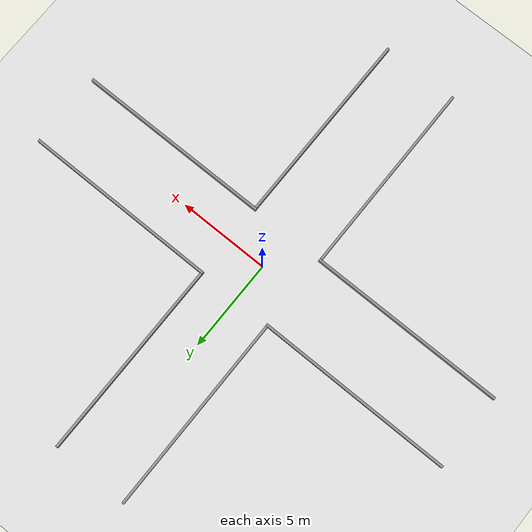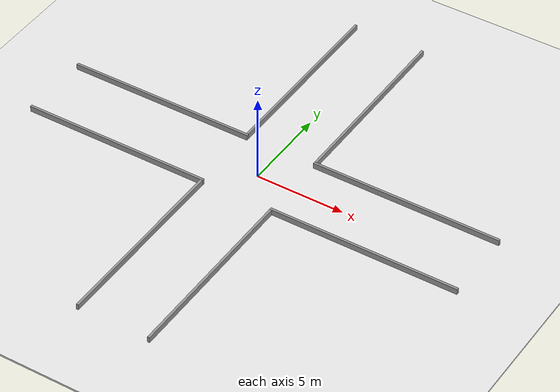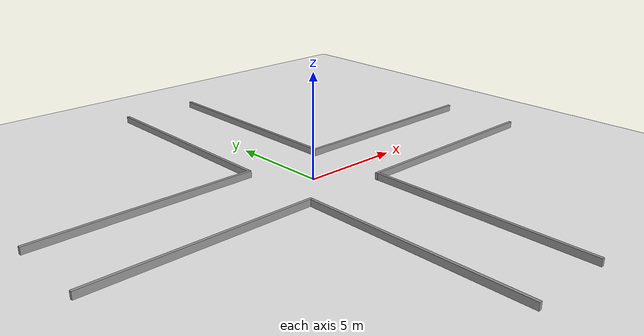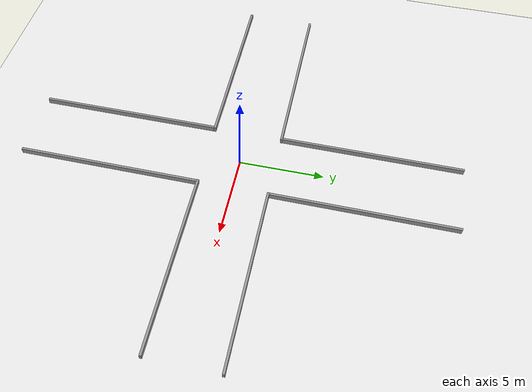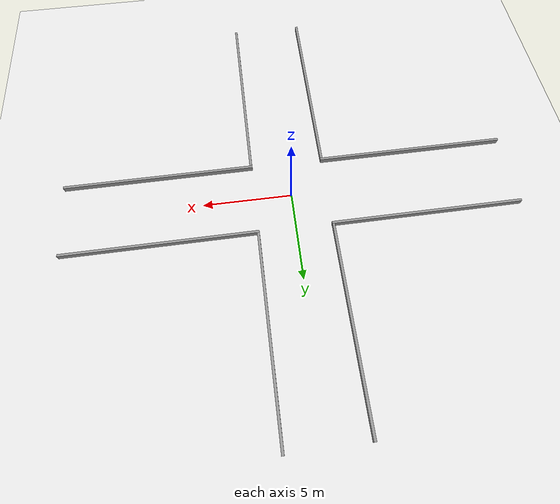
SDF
<sdf version="1.7">
 <world name="default">
  <light name="sun" type="directional">
   <pose>0 0 10 0 -0 0</pose>
   <diffuse>0.8 0.8 0.8 1</diffuse>
   <specular>0.2 0.2 0.2 1</specular>
   <attenuation>
    <range>1000</range>
    <constant>0.9</constant>
    <linear>0.01</linear>
    <quadratic>0.001</quadratic>
   </attenuation>
   <direction>-0.5 0.1 -0.9</direction>
   <spot><inner_angle>0</inner_angle><outer_angle>0</outer_angle><falloff>0</falloff></spot>
  </light>
  <model name="ground_plane">
   <static>1</static>
   <link name="link">
    <collision name="collision">
     <geometry><plane><normal>0 0 1</normal><size>100 100</size></plane></geometry>
     <surface>
      <contact><collide_bitmask>65535</collide_bitmask></contact>
      <friction><ode><mu>100</mu><mu2>50</mu2></ode></friction>
     </surface>
    </collision>
    <visual name="visual">
     <cast_shadows>0</cast_shadows>
     <geometry><plane><normal>0 0 1</normal><size>100 100</size></plane></geometry>
     <material>
      <script><uri>file://media/materials/scripts/gazebo.material</uri><name>Gazebo/White</name></script>
     </material>
    </visual>
   </link>
  </model>
  <gravity>0 0 -9.8</gravity>
  <magnetic_field>6e-06 2.3e-05 -4.2e-05</magnetic_field>
  <atmosphere type="adiabatic"/>
  <physics type="ode">
   <max_step_size>0.001</max_step_size>
   <real_time_factor>1</real_time_factor>
   <real_time_update_rate>1000</real_time_update_rate>
  </physics>
  <scene><ambient>0.4 0.4 0.4 1</ambient><background>0.7 0.7 0.7 1</background><shadows>1</shadows></scene>
  <spherical_coordinates>
   <surface_model>EARTH_WGS84</surface_model>
   <latitude_deg>0</latitude_deg>
   <longitude_deg>0</longitude_deg>
   <elevation>0</elevation>
   <heading_deg>0</heading_deg>
  </spherical_coordinates>
  <model name="intersection">
   <link name="link_0">
    <inertial>
     <mass>0.527326</mass>
     <inertia>
      <ixx>0.00644641</ixx>
      <ixy>0</ixy>
      <ixz>0</ixz>
      <iyy>5.08955</iyy>
      <iyz>0</iyz>
      <izz>5.08475</izz>
     </inertia>
    </inertial>
    <pose>7.37446 -2.06662 0.022372 0 -0 0</pose>
    <visual name="visual">
     <geometry><box><size>10.756 0.136932 0.357695</size></box></geometry>
     <material>
      <lighting>1</lighting>
      <script><uri>file://media/materials/scripts/gazebo.material</uri><name>Gazebo/Grey</name></script>
      <shader type="pixel"/>
     </material>
    </visual>
    <collision name="collision">
     <geometry><box><size>10.756 0.136932 0.357695</size></box></geometry>
     <surface>
      <friction>
       <ode><mu>1</mu><mu2>1</mu2><fdir1>0 0 0</fdir1><slip1>0</slip1><slip2>0</slip2></ode>
       <torsional>
        <coefficient>1</coefficient>
        <patch_radius>0</patch_radius>
        <surface_radius>0</surface_radius>
        <use_patch_radius>1</use_patch_radius>
        <ode><slip>0</slip></ode>
       </torsional>
      </friction>
      <bounce><restitution_coefficient>0</restitution_coefficient><threshold>1e+06</threshold></bounce>
      <contact>
       <collide_without_contact>0</collide_without_contact>
       <collide_without_contact_bitmask>1</collide_without_contact_bitmask>
       <collide_bitmask>1</collide_bitmask>
       <ode>
        <soft_cfm>0</soft_cfm>
        <soft_erp>0.2</soft_erp>
        <kp>1e+13</kp>
        <kd>1</kd>
        <max_vel>0.01</max_vel>
        <min_depth>0</min_depth>
       </ode>
       <bullet>
        <split_impulse>1</split_impulse>
        <split_impulse_penetration_threshold>-0.01</split_impulse_penetration_threshold>
        <soft_cfm>0</soft_cfm>
        <soft_erp>0.2</soft_erp>
        <kp>1e+13</kp>
        <kd>1</kd>
       </bullet>
      </contact>
     </surface>
    </collision>
   </link>
   <link name="link_0_clone">
    <inertial>
     <mass>0.527326</mass>
     <inertia>
      <ixx>0.00644641</ixx>
      <ixy>0</ixy>
      <ixz>0</ixz>
      <iyy>5.08955</iyy>
      <iyz>0</iyz>
      <izz>5.08475</izz>
     </inertia>
    </inertial>
    <pose>7.37467 2.06539 0.022372 0 -0 0</pose>
    <visual name="visual">
     <geometry><box><size>10.756 0.136932 0.357695</size></box></geometry>
     <material>
      <lighting>1</lighting>
      <script><uri>file://media/materials/scripts/gazebo.material</uri><name>Gazebo/Grey</name></script>
      <shader type="pixel"/>
     </material>
    </visual>
    <collision name="collision">
     <geometry><box><size>10.756 0.136932 0.357695</size></box></geometry>
     <surface>
      <friction>
       <ode><mu>1</mu><mu2>1</mu2><fdir1>0 0 0</fdir1><slip1>0</slip1><slip2>0</slip2></ode>
       <torsional>
        <coefficient>1</coefficient>
        <patch_radius>0</patch_radius>
        <surface_radius>0</surface_radius>
        <use_patch_radius>1</use_patch_radius>
        <ode><slip>0</slip></ode>
       </torsional>
      </friction>
      <bounce><restitution_coefficient>0</restitution_coefficient><threshold>1e+06</threshold></bounce>
      <contact>
       <collide_without_contact>0</collide_without_contact>
       <collide_without_contact_bitmask>1</collide_without_contact_bitmask>
       <collide_bitmask>1</collide_bitmask>
       <ode>
        <soft_cfm>0</soft_cfm>
        <soft_erp>0.2</soft_erp>
        <kp>1e+13</kp>
        <kd>1</kd>
        <max_vel>0.01</max_vel>
        <min_depth>0</min_depth>
       </ode>
       <bullet>
        <split_impulse>1</split_impulse>
        <split_impulse_penetration_threshold>-0.01</split_impulse_penetration_threshold>
        <soft_cfm>0</soft_cfm>
        <soft_erp>0.2</soft_erp>
        <kp>1e+13</kp>
        <kd>1</kd>
       </bullet>
      </contact>
     </surface>
    </collision>
   </link>
   <link name="link_0_clone_0">
    <inertial>
     <mass>0.527326</mass>
     <inertia>
      <ixx>0.00644641</ixx>
      <ixy>0</ixy>
      <ixz>0</ixz>
      <iyy>5.08955</iyy>
      <iyz>0</iyz>
      <izz>5.08475</izz>
     </inertia>
    </inertial>
    <pose>-7.37567 2.06509 0.022372 0 -0 0</pose>
    <visual name="visual">
     <geometry><box><size>10.756 0.136932 0.357695</size></box></geometry>
     <material>
      <lighting>1</lighting>
      <script><uri>file://media/materials/scripts/gazebo.material</uri><name>Gazebo/Grey</name></script>
      <shader type="pixel"/>
     </material>
    </visual>
    <collision name="collision">
     <geometry><box><size>10.756 0.136932 0.357695</size></box></geometry>
     <surface>
      <friction>
       <ode><mu>1</mu><mu2>1</mu2><fdir1>0 0 0</fdir1><slip1>0</slip1><slip2>0</slip2></ode>
       <torsional>
        <coefficient>1</coefficient>
        <patch_radius>0</patch_radius>
        <surface_radius>0</surface_radius>
        <use_patch_radius>1</use_patch_radius>
        <ode><slip>0</slip></ode>
       </torsional>
      </friction>
      <bounce><restitution_coefficient>0</restitution_coefficient><threshold>1e+06</threshold></bounce>
      <contact>
       <collide_without_contact>0</collide_without_contact>
       <collide_without_contact_bitmask>1</collide_without_contact_bitmask>
       <collide_bitmask>1</collide_bitmask>
       <ode>
        <soft_cfm>0</soft_cfm>
        <soft_erp>0.2</soft_erp>
        <kp>1e+13</kp>
        <kd>1</kd>
        <max_vel>0.01</max_vel>
        <min_depth>0</min_depth>
       </ode>
       <bullet>
        <split_impulse>1</split_impulse>
        <split_impulse_penetration_threshold>-0.01</split_impulse_penetration_threshold>
        <soft_cfm>0</soft_cfm>
        <soft_erp>0.2</soft_erp>
        <kp>1e+13</kp>
        <kd>1</kd>
       </bullet>
      </contact>
     </surface>
    </collision>
   </link>
   <link name="link_0_clone_1">
    <inertial>
     <mass>0.527326</mass>
     <inertia>
      <ixx>0.00644641</ixx>
      <ixy>0</ixy>
      <ixz>0</ixz>
      <iyy>5.08955</iyy>
      <iyz>0</iyz>
      <izz>5.08475</izz>
     </inertia>
    </inertial>
    <pose>-7.37843 -2.06594 0.022372 0 -0 0</pose>
    <visual name="visual">
     <geometry><box><size>10.756 0.136932 0.357695</size></box></geometry>
     <material>
      <lighting>1</lighting>
      <script><uri>file://media/materials/scripts/gazebo.material</uri><name>Gazebo/Grey</name></script>
      <shader type="pixel"/>
     </material>
    </visual>
    <collision name="collision">
     <geometry><box><size>10.756 0.136932 0.357695</size></box></geometry>
     <surface>
      <friction>
       <ode><mu>1</mu><mu2>1</mu2><fdir1>0 0 0</fdir1><slip1>0</slip1><slip2>0</slip2></ode>
       <torsional>
        <coefficient>1</coefficient>
        <patch_radius>0</patch_radius>
        <surface_radius>0</surface_radius>
        <use_patch_radius>1</use_patch_radius>
        <ode><slip>0</slip></ode>
       </torsional>
      </friction>
      <bounce><restitution_coefficient>0</restitution_coefficient><threshold>1e+06</threshold></bounce>
      <contact>
       <collide_without_contact>0</collide_without_contact>
       <collide_without_contact_bitmask>1</collide_without_contact_bitmask>
       <collide_bitmask>1</collide_bitmask>
       <ode>
        <soft_cfm>0</soft_cfm>
        <soft_erp>0.2</soft_erp>
        <kp>1e+13</kp>
        <kd>1</kd>
        <max_vel>0.01</max_vel>
        <min_depth>0</min_depth>
       </ode>
       <bullet>
        <split_impulse>1</split_impulse>
        <split_impulse_penetration_threshold>-0.01</split_impulse_penetration_threshold>
        <soft_cfm>0</soft_cfm>
        <soft_erp>0.2</soft_erp>
        <kp>1e+13</kp>
        <kd>1</kd>
       </bullet>
      </contact>
     </surface>
    </collision>
   </link>
   <link name="link_0_clone_2">
    <inertial>
     <mass>0.527326</mass>
     <inertia>
      <ixx>0.00644641</ixx>
      <ixy>0</ixy>
      <ixz>0</ixz>
      <iyy>5.08955</iyy>
      <iyz>0</iyz>
      <izz>5.08475</izz>
     </inertia>
    </inertial>
    <pose>2.0754 -7.50662 0.022372 0 -0 1.57132</pose>
    <visual name="visual">
     <geometry><box><size>10.756 0.136932 0.357695</size></box></geometry>
     <material>
      <lighting>1</lighting>
      <script><uri>file://media/materials/scripts/gazebo.material</uri><name>Gazebo/Grey</name></script>
      <shader type="pixel"/>
     </material>
    </visual>
    <collision name="collision">
     <geometry><box><size>10.756 0.136932 0.357695</size></box></geometry>
     <surface>
      <friction>
       <ode><mu>1</mu><mu2>1</mu2><fdir1>0 0 0</fdir1><slip1>0</slip1><slip2>0</slip2></ode>
       <torsional>
        <coefficient>1</coefficient>
        <patch_radius>0</patch_radius>
        <surface_radius>0</surface_radius>
        <use_patch_radius>1</use_patch_radius>
        <ode><slip>0</slip></ode>
       </torsional>
      </friction>
      <bounce><restitution_coefficient>0</restitution_coefficient><threshold>1e+06</threshold></bounce>
      <contact>
       <collide_without_contact>0</collide_without_contact>
       <collide_without_contact_bitmask>1</collide_without_contact_bitmask>
       <collide_bitmask>1</collide_bitmask>
       <ode>
        <soft_cfm>0</soft_cfm>
        <soft_erp>0.2</soft_erp>
        <kp>1e+13</kp>
        <kd>1</kd>
        <max_vel>0.01</max_vel>
        <min_depth>0</min_depth>
       </ode>
       <bullet>
        <split_impulse>1</split_impulse>
        <split_impulse_penetration_threshold>-0.01</split_impulse_penetration_threshold>
        <soft_cfm>0</soft_cfm>
        <soft_erp>0.2</soft_erp>
        <kp>1e+13</kp>
        <kd>1</kd>
       </bullet>
      </contact>
     </surface>
    </collision>
   </link>
   <link name="link_0_clone_2_clone">
    <inertial>
     <mass>0.527326</mass>
     <inertia>
      <ixx>0.00644641</ixx>
      <ixy>0</ixy>
      <ixz>0</ixz>
      <iyy>5.08955</iyy>
      <iyz>0</iyz>
      <izz>5.08475</izz>
     </inertia>
    </inertial>
    <pose>-2.06322 -7.51033 0.022372 0 -0 1.57132</pose>
    <visual name="visual">
     <geometry><box><size>10.756 0.136932 0.357695</size></box></geometry>
     <material>
      <lighting>1</lighting>
      <script><uri>file://media/materials/scripts/gazebo.material</uri><name>Gazebo/Grey</name></script>
      <shader type="pixel"/>
     </material>
    </visual>
    <collision name="collision">
     <geometry><box><size>10.756 0.136932 0.357695</size></box></geometry>
     <surface>
      <friction>
       <ode><mu>1</mu><mu2>1</mu2><fdir1>0 0 0</fdir1><slip1>0</slip1><slip2>0</slip2></ode>
       <torsional>
        <coefficient>1</coefficient>
        <patch_radius>0</patch_radius>
        <surface_radius>0</surface_radius>
        <use_patch_radius>1</use_patch_radius>
        <ode><slip>0</slip></ode>
       </torsional>
      </friction>
      <bounce><restitution_coefficient>0</restitution_coefficient><threshold>1e+06</threshold></bounce>
      <contact>
       <collide_without_contact>0</collide_without_contact>
       <collide_without_contact_bitmask>1</collide_without_contact_bitmask>
       <collide_bitmask>1</collide_bitmask>
       <ode>
        <soft_cfm>0</soft_cfm>
        <soft_erp>0.2</soft_erp>
        <kp>1e+13</kp>
        <kd>1</kd>
        <max_vel>0.01</max_vel>
        <min_depth>0</min_depth>
       </ode>
       <bullet>
        <split_impulse>1</split_impulse>
        <split_impulse_penetration_threshold>-0.01</split_impulse_penetration_threshold>
        <soft_cfm>0</soft_cfm>
        <soft_erp>0.2</soft_erp>
        <kp>1e+13</kp>
        <kd>1</kd>
       </bullet>
      </contact>
     </surface>
    </collision>
   </link>
   <link name="link_0_clone_2_clone_0">
    <inertial>
     <mass>0.527326</mass>
     <inertia>
      <ixx>0.00644641</ixx>
      <ixy>0</ixy>
      <ixz>0</ixz>
      <iyy>5.08955</iyy>
      <iyz>0</iyz>
      <izz>5.08475</izz>
     </inertia>
    </inertial>
    <pose>-2.07313 7.50972 0.022372 0 -0 1.57132</pose>
    <visual name="visual">
     <geometry><box><size>10.756 0.136932 0.357695</size></box></geometry>
     <material>
      <lighting>1</lighting>
      <script><uri>file://media/materials/scripts/gazebo.material</uri><name>Gazebo/Grey</name></script>
      <shader type="pixel"/>
     </material>
    </visual>
    <collision name="collision">
     <geometry><box><size>10.756 0.136932 0.357695</size></box></geometry>
     <surface>
      <friction>
       <ode><mu>1</mu><mu2>1</mu2><fdir1>0 0 0</fdir1><slip1>0</slip1><slip2>0</slip2></ode>
       <torsional>
        <coefficient>1</coefficient>
        <patch_radius>0</patch_radius>
        <surface_radius>0</surface_radius>
        <use_patch_radius>1</use_patch_radius>
        <ode><slip>0</slip></ode>
       </torsional>
      </friction>
      <bounce><restitution_coefficient>0</restitution_coefficient><threshold>1e+06</threshold></bounce>
      <contact>
       <collide_without_contact>0</collide_without_contact>
       <collide_without_contact_bitmask>1</collide_without_contact_bitmask>
       <collide_bitmask>1</collide_bitmask>
       <ode>
        <soft_cfm>0</soft_cfm>
        <soft_erp>0.2</soft_erp>
        <kp>1e+13</kp>
        <kd>1</kd>
        <max_vel>0.01</max_vel>
        <min_depth>0</min_depth>
       </ode>
       <bullet>
        <split_impulse>1</split_impulse>
        <split_impulse_penetration_threshold>-0.01</split_impulse_penetration_threshold>
        <soft_cfm>0</soft_cfm>
        <soft_erp>0.2</soft_erp>
        <kp>1e+13</kp>
        <kd>1</kd>
       </bullet>
      </contact>
     </surface>
    </collision>
   </link>
   <link name="link_0_clone_2_clone_1">
    <inertial>
     <mass>0.527326</mass>
     <inertia>
      <ixx>0.00644641</ixx>
      <ixy>0</ixy>
      <ixz>0</ixz>
      <iyy>5.08955</iyy>
      <iyz>0</iyz>
      <izz>5.08475</izz>
     </inertia>
    </inertial>
    <pose>2.06155 7.51219 0.022372 0 -0 1.57132</pose>
    <visual name="visual">
     <geometry><box><size>10.756 0.136932 0.357695</size></box></geometry>
     <material>
      <lighting>1</lighting>
      <script><uri>file://media/materials/scripts/gazebo.material</uri><name>Gazebo/Grey</name></script>
      <shader type="pixel"/>
     </material>
    </visual>
    <collision name="collision">
     <geometry><box><size>10.756 0.136932 0.357695</size></box></geometry>
     <surface>
      <friction>
       <ode><mu>1</mu><mu2>1</mu2><fdir1>0 0 0</fdir1><slip1>0</slip1><slip2>0</slip2></ode>
       <torsional>
        <coefficient>1</coefficient>
        <patch_radius>0</patch_radius>
        <surface_radius>0</surface_radius>
        <use_patch_radius>1</use_patch_radius>
        <ode><slip>0</slip></ode>
       </torsional>
      </friction>
      <bounce><restitution_coefficient>0</restitution_coefficient><threshold>1e+06</threshold></bounce>
      <contact>
       <collide_without_contact>0</collide_without_contact>
       <collide_without_contact_bitmask>1</collide_without_contact_bitmask>
       <collide_bitmask>1</collide_bitmask>
       <ode>
        <soft_cfm>0</soft_cfm>
        <soft_erp>0.2</soft_erp>
        <kp>1e+13</kp>
        <kd>1</kd>
        <max_vel>0.01</max_vel>
        <min_depth>0</min_depth>
       </ode>
       <bullet>
        <split_impulse>1</split_impulse>
        <split_impulse_penetration_threshold>-0.01</split_impulse_penetration_threshold>
        <soft_cfm>0</soft_cfm>
        <soft_erp>0.2</soft_erp>
        <kp>1e+13</kp>
        <kd>1</kd>
       </bullet>
      </contact>
     </surface>
    </collision>
   </link>
   <model name="ground_plane">
    <static>1</static>
    <link name="link">
     <collision name="collision">
      <geometry><plane><normal>0 0 1</normal><size>100 100</size></plane></geometry>
      <surface>
       <contact><collide_bitmask>65535</collide_bitmask></contact>
       <friction><ode><mu>100</mu><mu2>50</mu2></ode></friction>
      </surface>
     </collision>
     <visual name="visual">
      <cast_shadows>0</cast_shadows>
      <geometry><plane><normal>0 0 1</normal><size>100 100</size></plane></geometry>
      <material>
       <script><uri>file://media/materials/scripts/gazebo.material</uri><name>Gazebo/White</name></script>
      </material>
     </visual>
    </link>
    <pose>0.004373 -0.002904 -0.178972 0 -0 0</pose>
   </model>
   <static>0</static>
   <pose>0.02648 0.047827 0.156464 -6e-06 -0 -0</pose>
  </model>
 </world>
</sdf>
